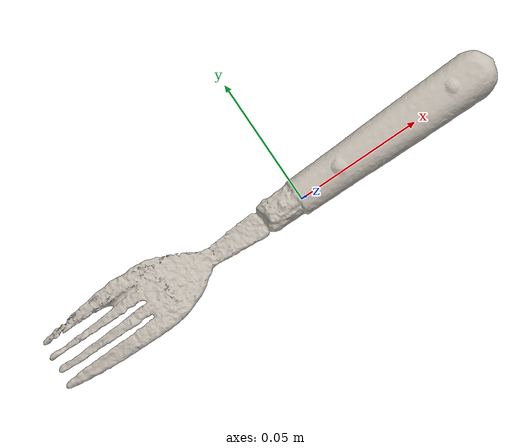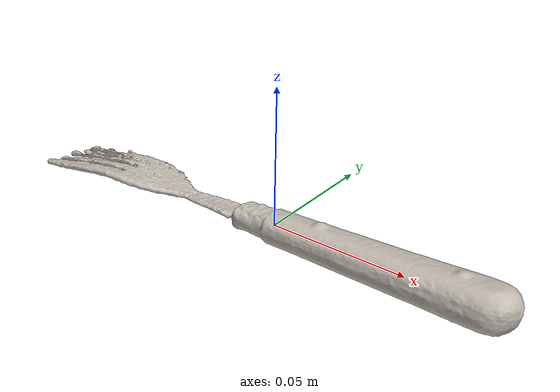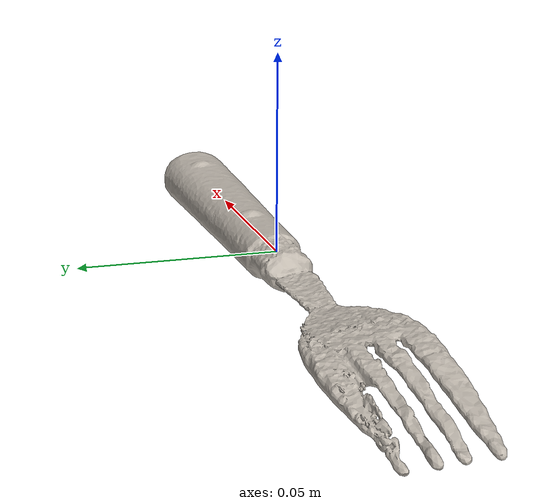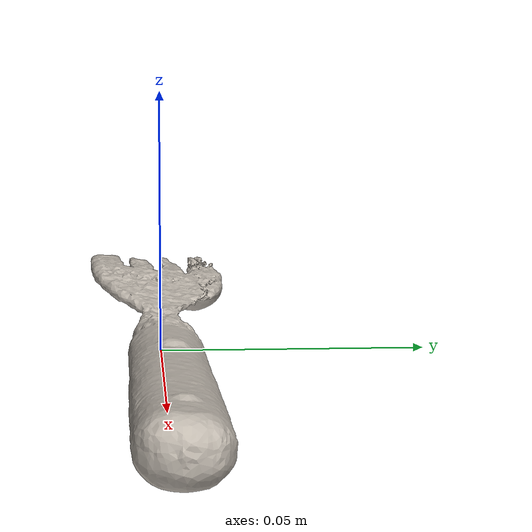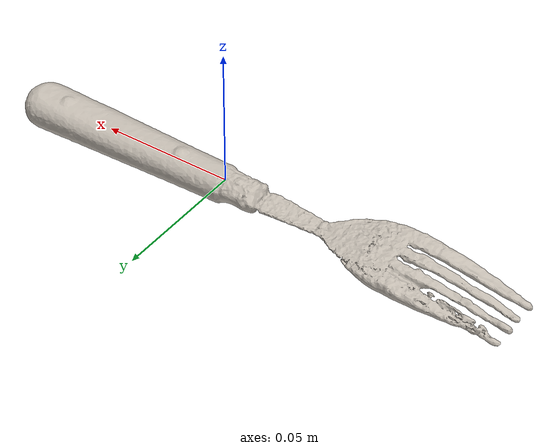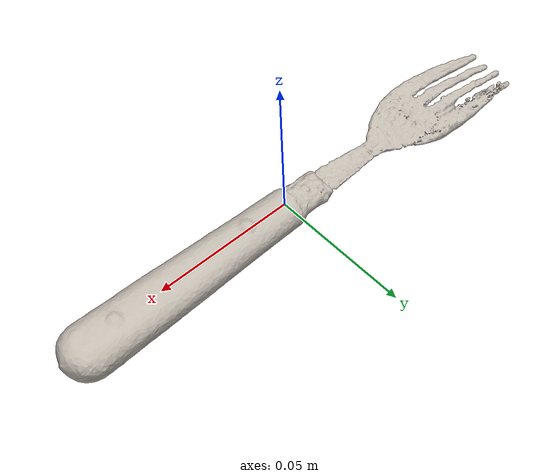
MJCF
<mujoco model="textured_centered">
  <default>
    <default class="visual">
      <geom group="2" type="mesh" contype="0" conaffinity="0"/>
    </default>
    <default class="collision">
      <geom group="3" type="mesh"/>
    </default>
  </default>
  <asset>
    <texture type="2d" name="texture_map" file="texture_map.png"/>
    <material name="material_0.004" texture="texture_map" specular="0.0" shininess="0.0"/>
    <mesh file="textured_centered.obj"/>
    <mesh file="textured_centered_collision_0.obj"/>
    <mesh file="textured_centered_collision_1.obj"/>
  </asset>
  <worldbody>
    <body name="textured_centered">
      <geom material="material_0.004" mesh="textured_centered" class="visual"/>
      <geom mesh="textured_centered_collision_0" rgba="0.8627492125215112 0.6975605096023463 0.6242159005661799 1" class="collision"/>
      <geom mesh="textured_centered_collision_1" rgba="0.6483155144667232 0.7138423122685251 0.74085947850323 1" class="collision"/>
    </body>
  </worldbody>
</mujoco>
